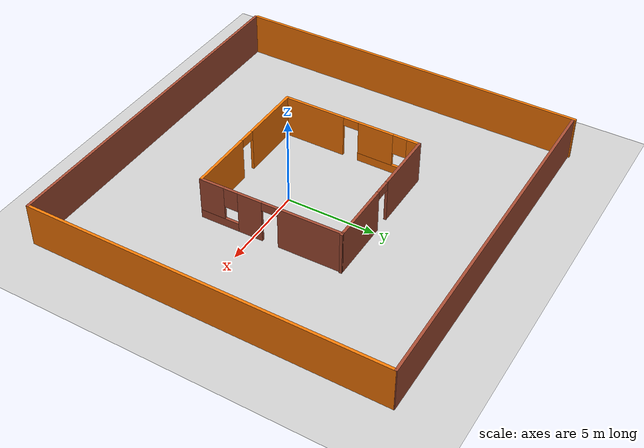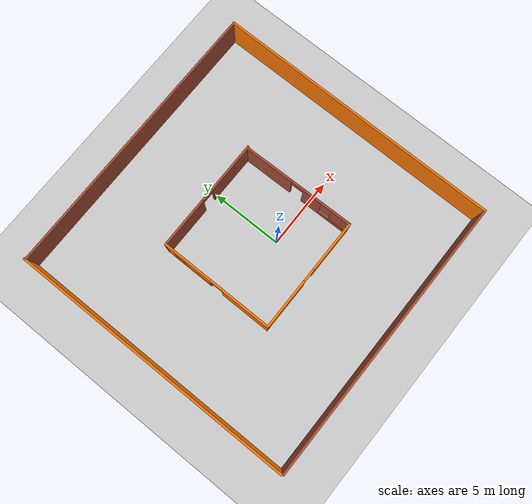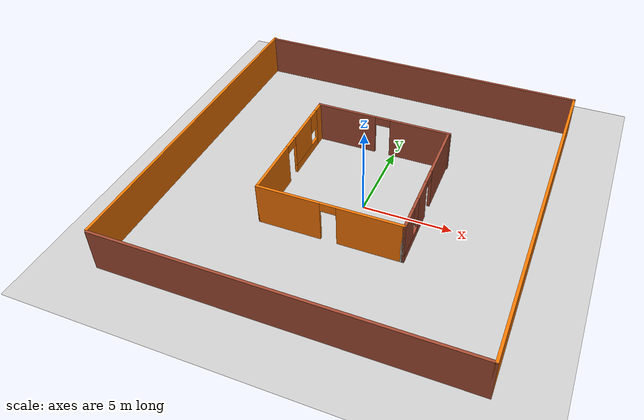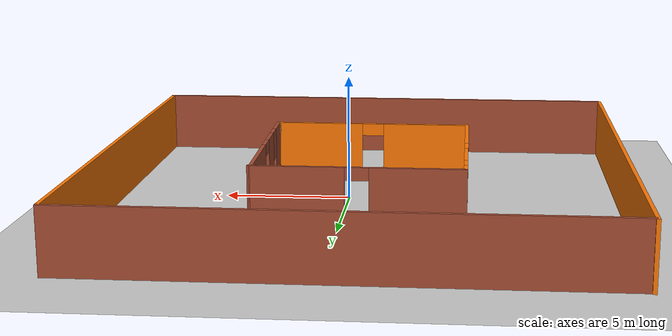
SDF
<sdf version="1.6">
 <world name="default">
  <model name="ground_plane">
   <static>1</static>
   <link name="link">
    <collision name="collision">
     <geometry><plane><normal>0 0 1</normal><size>100 100</size></plane></geometry>
     <surface><friction><ode><mu>100</mu><mu2>50</mu2></ode></friction></surface>
    </collision>
    <visual name="visual">
     <cast_shadows>0</cast_shadows>
     <geometry><plane><normal>0 0 1</normal><size>100 100</size></plane></geometry>
     <material>
      <script><uri>file://media/materials/scripts/gazebo.material</uri><name>Gazebo/Grey</name></script>
     </material>
    </visual>
   </link>
  </model>
  <model name="walls">
   <link name="Wall_44">
    <pose>0 -10 0 0 -0 0</pose>
    <inertial>
     <mass>1</mass>
     <inertia><ixx>1</ixx><ixy>0</ixy><ixz>0</ixz><iyy>1</iyy><iyz>0</iyz><izz>1</izz></inertia>
    </inertial>
    <visual name="Wall_44_Visual">
     <pose>0 0 1.25 0 -0 0</pose>
     <geometry><box><size>20.15 0.15 2.5</size></box></geometry>
     <material>
      <script><uri>file://media/materials/scripts/gazebo.material</uri><name>Gazebo/Bricks</name></script>
      <ambient>0.761 0.663 0.627 1</ambient>
      <shader type="pixel"><normal_map>__default__</normal_map></shader>
      <diffuse>1 1 1 1</diffuse>
      <specular>0.2 0.2 0.2 1</specular>
      <emissive>0 0 0 1</emissive>
     </material>
     <meta><layer>0</layer></meta>
    </visual>
    <collision name="Wall_44_Collision">
     <pose>0 0 1.25 0 -0 0</pose>
     <geometry><box><size>20.15 0.15 2.5</size></box></geometry>
     <surface>
      <friction>
       <ode><mu>1</mu><mu2>1</mu2><fdir1>0 0 0</fdir1><slip1>0</slip1><slip2>0</slip2></ode>
       <torsional>
        <coefficient>1</coefficient>
        <patch_radius>0</patch_radius>
        <surface_radius>0</surface_radius>
        <use_patch_radius>1</use_patch_radius>
        <ode><slip>0</slip></ode>
       </torsional>
      </friction>
      <bounce><restitution_coefficient>0</restitution_coefficient><threshold>1e+06</threshold></bounce>
      <contact>
       <collide_without_contact>0</collide_without_contact>
       <collide_without_contact_bitmask>1</collide_without_contact_bitmask>
       <collide_bitmask>1</collide_bitmask>
       <ode>
        <soft_cfm>0</soft_cfm>
        <soft_erp>0.2</soft_erp>
        <kp>1e+13</kp>
        <kd>1</kd>
        <max_vel>0.01</max_vel>
        <min_depth>0</min_depth>
       </ode>
       <bullet>
        <split_impulse>1</split_impulse>
        <split_impulse_penetration_threshold>-0.01</split_impulse_penetration_threshold>
        <soft_cfm>0</soft_cfm>
        <soft_erp>0.2</soft_erp>
        <kp>1e+13</kp>
        <kd>1</kd>
       </bullet>
      </contact>
     </surface>
    </collision>
   </link>
   <link name="Wall_44_clone">
    <pose>-0.011522 10.0457 0 0 -0 0</pose>
    <inertial>
     <mass>1</mass>
     <inertia><ixx>1</ixx><ixy>0</ixy><ixz>0</ixz><iyy>1</iyy><iyz>0</iyz><izz>1</izz></inertia>
    </inertial>
    <visual name="Wall_44_Visual">
     <pose>0 0 1.25 0 -0 0</pose>
     <geometry><box><size>20.15 0.15 2.5</size></box></geometry>
     <material>
      <script><uri>file://media/materials/scripts/gazebo.material</uri><name>Gazebo/Bricks</name></script>
      <ambient>0.761 0.663 0.627 1</ambient>
      <shader type="pixel"><normal_map>__default__</normal_map></shader>
      <diffuse>1 1 1 1</diffuse>
      <specular>0.2 0.2 0.2 1</specular>
      <emissive>0 0 0 1</emissive>
     </material>
     <meta><layer>0</layer></meta>
    </visual>
    <collision name="Wall_44_Collision">
     <pose>0 0 1.25 0 -0 0</pose>
     <geometry><box><size>20.15 0.15 2.5</size></box></geometry>
     <surface>
      <friction>
       <ode><mu>1</mu><mu2>1</mu2><fdir1>0 0 0</fdir1><slip1>0</slip1><slip2>0</slip2></ode>
       <torsional>
        <coefficient>1</coefficient>
        <patch_radius>0</patch_radius>
        <surface_radius>0</surface_radius>
        <use_patch_radius>1</use_patch_radius>
        <ode><slip>0</slip></ode>
       </torsional>
      </friction>
      <bounce><restitution_coefficient>0</restitution_coefficient><threshold>1e+06</threshold></bounce>
      <contact>
       <collide_without_contact>0</collide_without_contact>
       <collide_without_contact_bitmask>1</collide_without_contact_bitmask>
       <collide_bitmask>1</collide_bitmask>
       <ode>
        <soft_cfm>0</soft_cfm>
        <soft_erp>0.2</soft_erp>
        <kp>1e+13</kp>
        <kd>1</kd>
        <max_vel>0.01</max_vel>
        <min_depth>0</min_depth>
       </ode>
       <bullet>
        <split_impulse>1</split_impulse>
        <split_impulse_penetration_threshold>-0.01</split_impulse_penetration_threshold>
        <soft_cfm>0</soft_cfm>
        <soft_erp>0.2</soft_erp>
        <kp>1e+13</kp>
        <kd>1</kd>
       </bullet>
      </contact>
     </surface>
    </collision>
   </link>
   <link name="Wall_45">
    <pose>10 0 0 0 -0 1.5708</pose>
    <visual name="Wall_45_Visual">
     <pose>0 0 1.25 0 -0 0</pose>
     <geometry><box><size>20.15 0.15 2.5</size></box></geometry>
     <material>
      <script><uri>file://media/materials/scripts/gazebo.material</uri><name>Gazebo/Grey</name></script>
      <ambient>0.996078 0.47451 0.0196078 1</ambient>
      <shader type="pixel"/>
      <diffuse>0.7 0.7 0.7 1</diffuse>
      <specular>0.01 0.01 0.01 1</specular>
      <emissive>0 0 0 1</emissive>
     </material>
     <meta><layer>0</layer></meta>
    </visual>
    <collision name="Wall_45_Collision">
     <pose>0 0 1.25 0 -0 0</pose>
     <geometry><box><size>20.15 0.15 2.5</size></box></geometry>
     <surface>
      <friction>
       <ode><mu>1</mu><mu2>1</mu2><fdir1>0 0 0</fdir1><slip1>0</slip1><slip2>0</slip2></ode>
       <torsional>
        <coefficient>1</coefficient>
        <patch_radius>0</patch_radius>
        <surface_radius>0</surface_radius>
        <use_patch_radius>1</use_patch_radius>
        <ode><slip>0</slip></ode>
       </torsional>
      </friction>
      <bounce><restitution_coefficient>0</restitution_coefficient><threshold>1e+06</threshold></bounce>
      <contact>
       <collide_without_contact>0</collide_without_contact>
       <collide_without_contact_bitmask>1</collide_without_contact_bitmask>
       <collide_bitmask>1</collide_bitmask>
       <ode>
        <soft_cfm>0</soft_cfm>
        <soft_erp>0.2</soft_erp>
        <kp>1e+13</kp>
        <kd>1</kd>
        <max_vel>0.01</max_vel>
        <min_depth>0</min_depth>
       </ode>
       <bullet>
        <split_impulse>1</split_impulse>
        <split_impulse_penetration_threshold>-0.01</split_impulse_penetration_threshold>
        <soft_cfm>0</soft_cfm>
        <soft_erp>0.2</soft_erp>
        <kp>1e+13</kp>
        <kd>1</kd>
       </bullet>
      </contact>
     </surface>
    </collision>
   </link>
   <link name="Wall_45_clone">
    <pose>-10.0927 0.116806 0 0 -0 1.5708</pose>
    <visual name="Wall_45_Visual">
     <pose>0 0 1.25 0 -0 0</pose>
     <geometry><box><size>20.15 0.15 2.5</size></box></geometry>
     <material>
      <script><uri>file://media/materials/scripts/gazebo.material</uri><name>Gazebo/Grey</name></script>
      <ambient>0.996078 0.47451 0.0196078 1</ambient>
      <shader type="pixel"/>
      <diffuse>0.7 0.7 0.7 1</diffuse>
      <specular>0.01 0.01 0.01 1</specular>
      <emissive>0 0 0 1</emissive>
     </material>
     <meta><layer>0</layer></meta>
    </visual>
    <collision name="Wall_45_Collision">
     <pose>0 0 1.25 0 -0 0</pose>
     <geometry><box><size>20.15 0.15 2.5</size></box></geometry>
     <surface>
      <friction>
       <ode><mu>1</mu><mu2>1</mu2><fdir1>0 0 0</fdir1><slip1>0</slip1><slip2>0</slip2></ode>
       <torsional>
        <coefficient>1</coefficient>
        <patch_radius>0</patch_radius>
        <surface_radius>0</surface_radius>
        <use_patch_radius>1</use_patch_radius>
        <ode><slip>0</slip></ode>
       </torsional>
      </friction>
      <bounce><restitution_coefficient>0</restitution_coefficient><threshold>1e+06</threshold></bounce>
      <contact>
       <collide_without_contact>0</collide_without_contact>
       <collide_without_contact_bitmask>1</collide_without_contact_bitmask>
       <collide_bitmask>1</collide_bitmask>
       <ode>
        <soft_cfm>0</soft_cfm>
        <soft_erp>0.2</soft_erp>
        <kp>1e+13</kp>
        <kd>1</kd>
        <max_vel>0.01</max_vel>
        <min_depth>0</min_depth>
       </ode>
       <bullet>
        <split_impulse>1</split_impulse>
        <split_impulse_penetration_threshold>-0.01</split_impulse_penetration_threshold>
        <soft_cfm>0</soft_cfm>
        <soft_erp>0.2</soft_erp>
        <kp>1e+13</kp>
        <kd>1</kd>
       </bullet>
      </contact>
     </surface>
    </collision>
   </link>
   <link name="Wall_49">
    <pose>-4 0 0 0 0 -1.5708</pose>
    <visual name="Wall_49_Visual_0">
     <pose>-3.69081 0 1.25 0 -0 0</pose>
     <geometry><box><size>0.768371 0.15 2.5</size></box></geometry>
     <material>
      <script><uri>file://media/materials/scripts/gazebo.material</uri><name>Gazebo/Grey</name></script>
      <ambient>0.996078 0.47451 0.0196078 1</ambient>
      <shader type="pixel"/>
      <diffuse>0.7 0.7 0.7 1</diffuse>
      <specular>0.01 0.01 0.01 1</specular>
      <emissive>0 0 0 1</emissive>
     </material>
     <meta><layer>0</layer></meta>
    </visual>
    <visual name="Wall_49_Visual_5">
     <pose>0 0 2.25 0 -0 0</pose>
     <geometry><box><size>0.9 0.15 0.5</size></box></geometry>
     <material>
      <script><uri>file://media/materials/scripts/gazebo.material</uri><name>Gazebo/Grey</name></script>
      <ambient>0.996078 0.47451 0.0196078 1</ambient>
      <shader type="pixel"/>
      <diffuse>0.7 0.7 0.7 1</diffuse>
      <specular>0.01 0.01 0.01 1</specular>
      <emissive>0 0 0 1</emissive>
     </material>
     <meta><layer>0</layer></meta>
    </visual>
    <visual name="Wall_49_Visual_4">
     <pose>-2.90663 0 1.9 0 -0 0</pose>
     <geometry><box><size>0.8 0.15 1.2</size></box></geometry>
     <material>
      <script><uri>file://media/materials/scripts/gazebo.material</uri><name>Gazebo/Grey</name></script>
      <ambient>0.996078 0.47451 0.0196078 1</ambient>
      <shader type="pixel"/>
      <diffuse>0.7 0.7 0.7 1</diffuse>
      <specular>0.01 0.01 0.01 1</specular>
      <emissive>0 0 0 1</emissive>
     </material>
     <meta><layer>0</layer></meta>
    </visual>
    <visual name="Wall_49_Visual_3">
     <pose>-1.47831 0 1.5 0 -0 0</pose>
     <geometry><box><size>2.05663 0.15 2</size></box></geometry>
     <material>
      <script><uri>file://media/materials/scripts/gazebo.material</uri><name>Gazebo/Grey</name></script>
      <ambient>0.996078 0.47451 0.0196078 1</ambient>
      <shader type="pixel"/>
      <diffuse>0.7 0.7 0.7 1</diffuse>
      <specular>0.01 0.01 0.01 1</specular>
      <emissive>0 0 0 1</emissive>
     </material>
     <meta><layer>0</layer></meta>
    </visual>
    <visual name="Wall_49_Visual_1">
     <pose>2.2625 0 1.25 0 -0 0</pose>
     <geometry><box><size>3.625 0.15 2.5</size></box></geometry>
     <material>
      <script><uri>file://media/materials/scripts/gazebo.material</uri><name>Gazebo/Grey</name></script>
      <ambient>0.996078 0.47451 0.0196078 1</ambient>
      <shader type="pixel"/>
      <diffuse>0.7 0.7 0.7 1</diffuse>
      <specular>0.01 0.01 0.01 1</specular>
      <emissive>0 0 0 1</emissive>
     </material>
     <meta><layer>0</layer></meta>
    </visual>
    <visual name="Wall_49_Visual_2">
     <pose>-1.87831 0 0.25 0 -0 0</pose>
     <geometry><box><size>2.85663 0.15 0.5</size></box></geometry>
     <material>
      <script><uri>file://media/materials/scripts/gazebo.material</uri><name>Gazebo/Grey</name></script>
      <ambient>0.996078 0.47451 0.0196078 1</ambient>
      <shader type="pixel"/>
      <diffuse>0.7 0.7 0.7 1</diffuse>
      <specular>0.01 0.01 0.01 1</specular>
      <emissive>0 0 0 1</emissive>
     </material>
     <meta><layer>0</layer></meta>
    </visual>
    <collision name="Wall_49_Collision_2">
     <pose>-1.87831 0 0.25 0 -0 0</pose>
     <geometry><box><size>2.85663 0.15 0.5</size></box></geometry>
     <surface>
      <friction>
       <ode><mu>1</mu><mu2>1</mu2><fdir1>0 0 0</fdir1><slip1>0</slip1><slip2>0</slip2></ode>
       <torsional>
        <coefficient>1</coefficient>
        <patch_radius>0</patch_radius>
        <surface_radius>0</surface_radius>
        <use_patch_radius>1</use_patch_radius>
        <ode><slip>0</slip></ode>
       </torsional>
      </friction>
      <bounce><restitution_coefficient>0</restitution_coefficient><threshold>1e+06</threshold></bounce>
      <contact>
       <collide_without_contact>0</collide_without_contact>
       <collide_without_contact_bitmask>1</collide_without_contact_bitmask>
       <collide_bitmask>1</collide_bitmask>
       <ode>
        <soft_cfm>0</soft_cfm>
        <soft_erp>0.2</soft_erp>
        <kp>1e+13</kp>
        <kd>1</kd>
        <max_vel>0.01</max_vel>
        <min_depth>0</min_depth>
       </ode>
       <bullet>
        <split_impulse>1</split_impulse>
        <split_impulse_penetration_threshold>-0.01</split_impulse_penetration_threshold>
        <soft_cfm>0</soft_cfm>
        <soft_erp>0.2</soft_erp>
        <kp>1e+13</kp>
        <kd>1</kd>
       </bullet>
      </contact>
     </surface>
    </collision>
    <collision name="Wall_49_Collision_4">
     <pose>-2.90663 0 1.9 0 -0 0</pose>
     <geometry><box><size>0.8 0.15 1.2</size></box></geometry>
     <surface>
      <friction>
       <ode><mu>1</mu><mu2>1</mu2><fdir1>0 0 0</fdir1><slip1>0</slip1><slip2>0</slip2></ode>
       <torsional>
        <coefficient>1</coefficient>
        <patch_radius>0</patch_radius>
        <surface_radius>0</surface_radius>
        <use_patch_radius>1</use_patch_radius>
        <ode><slip>0</slip></ode>
       </torsional>
      </friction>
      <bounce><restitution_coefficient>0</restitution_coefficient><threshold>1e+06</threshold></bounce>
      <contact>
       <collide_without_contact>0</collide_without_contact>
       <collide_without_contact_bitmask>1</collide_without_contact_bitmask>
       <collide_bitmask>1</collide_bitmask>
       <ode>
        <soft_cfm>0</soft_cfm>
        <soft_erp>0.2</soft_erp>
        <kp>1e+13</kp>
        <kd>1</kd>
        <max_vel>0.01</max_vel>
        <min_depth>0</min_depth>
       </ode>
       <bullet>
        <split_impulse>1</split_impulse>
        <split_impulse_penetration_threshold>-0.01</split_impulse_penetration_threshold>
        <soft_cfm>0</soft_cfm>
        <soft_erp>0.2</soft_erp>
        <kp>1e+13</kp>
        <kd>1</kd>
       </bullet>
      </contact>
     </surface>
    </collision>
    <collision name="Wall_49_Collision_1">
     <pose>2.2625 0 1.25 0 -0 0</pose>
     <geometry><box><size>3.625 0.15 2.5</size></box></geometry>
     <surface>
      <friction>
       <ode><mu>1</mu><mu2>1</mu2><fdir1>0 0 0</fdir1><slip1>0</slip1><slip2>0</slip2></ode>
       <torsional>
        <coefficient>1</coefficient>
        <patch_radius>0</patch_radius>
        <surface_radius>0</surface_radius>
        <use_patch_radius>1</use_patch_radius>
        <ode><slip>0</slip></ode>
       </torsional>
      </friction>
      <bounce><restitution_coefficient>0</restitution_coefficient><threshold>1e+06</threshold></bounce>
      <contact>
       <collide_without_contact>0</collide_without_contact>
       <collide_without_contact_bitmask>1</collide_without_contact_bitmask>
       <collide_bitmask>1</collide_bitmask>
       <ode>
        <soft_cfm>0</soft_cfm>
        <soft_erp>0.2</soft_erp>
        <kp>1e+13</kp>
        <kd>1</kd>
        <max_vel>0.01</max_vel>
        <min_depth>0</min_depth>
       </ode>
       <bullet>
        <split_impulse>1</split_impulse>
        <split_impulse_penetration_threshold>-0.01</split_impulse_penetration_threshold>
        <soft_cfm>0</soft_cfm>
        <soft_erp>0.2</soft_erp>
        <kp>1e+13</kp>
        <kd>1</kd>
       </bullet>
      </contact>
     </surface>
    </collision>
    <collision name="Wall_49_Collision_5">
     <pose>0 0 2.25 0 -0 0</pose>
     <geometry><box><size>0.9 0.15 0.5</size></box></geometry>
     <surface>
      <friction>
       <ode><mu>1</mu><mu2>1</mu2><fdir1>0 0 0</fdir1><slip1>0</slip1><slip2>0</slip2></ode>
       <torsional>
        <coefficient>1</coefficient>
        <patch_radius>0</patch_radius>
        <surface_radius>0</surface_radius>
        <use_patch_radius>1</use_patch_radius>
        <ode><slip>0</slip></ode>
       </torsional>
      </friction>
      <bounce><restitution_coefficient>0</restitution_coefficient><threshold>1e+06</threshold></bounce>
      <contact>
       <collide_without_contact>0</collide_without_contact>
       <collide_without_contact_bitmask>1</collide_without_contact_bitmask>
       <collide_bitmask>1</collide_bitmask>
       <ode>
        <soft_cfm>0</soft_cfm>
        <soft_erp>0.2</soft_erp>
        <kp>1e+13</kp>
        <kd>1</kd>
        <max_vel>0.01</max_vel>
        <min_depth>0</min_depth>
       </ode>
       <bullet>
        <split_impulse>1</split_impulse>
        <split_impulse_penetration_threshold>-0.01</split_impulse_penetration_threshold>
        <soft_cfm>0</soft_cfm>
        <soft_erp>0.2</soft_erp>
        <kp>1e+13</kp>
        <kd>1</kd>
       </bullet>
      </contact>
     </surface>
    </collision>
    <collision name="Wall_49_Collision_3">
     <pose>-1.47831 0 1.5 0 -0 0</pose>
     <geometry><box><size>2.05663 0.15 2</size></box></geometry>
     <surface>
      <friction>
       <ode><mu>1</mu><mu2>1</mu2><fdir1>0 0 0</fdir1><slip1>0</slip1><slip2>0</slip2></ode>
       <torsional>
        <coefficient>1</coefficient>
        <patch_radius>0</patch_radius>
        <surface_radius>0</surface_radius>
        <use_patch_radius>1</use_patch_radius>
        <ode><slip>0</slip></ode>
       </torsional>
      </friction>
      <bounce><restitution_coefficient>0</restitution_coefficient><threshold>1e+06</threshold></bounce>
      <contact>
       <collide_without_contact>0</collide_without_contact>
       <collide_without_contact_bitmask>1</collide_without_contact_bitmask>
       <collide_bitmask>1</collide_bitmask>
       <ode>
        <soft_cfm>0</soft_cfm>
        <soft_erp>0.2</soft_erp>
        <kp>1e+13</kp>
        <kd>1</kd>
        <max_vel>0.01</max_vel>
        <min_depth>0</min_depth>
       </ode>
       <bullet>
        <split_impulse>1</split_impulse>
        <split_impulse_penetration_threshold>-0.01</split_impulse_penetration_threshold>
        <soft_cfm>0</soft_cfm>
        <soft_erp>0.2</soft_erp>
        <kp>1e+13</kp>
        <kd>1</kd>
       </bullet>
      </contact>
     </surface>
    </collision>
    <collision name="Wall_49_Collision_0">
     <pose>-3.69081 0 1.25 0 -0 0</pose>
     <geometry><box><size>0.768371 0.15 2.5</size></box></geometry>
     <surface>
      <friction>
       <ode><mu>1</mu><mu2>1</mu2><fdir1>0 0 0</fdir1><slip1>0</slip1><slip2>0</slip2></ode>
       <torsional>
        <coefficient>1</coefficient>
        <patch_radius>0</patch_radius>
        <surface_radius>0</surface_radius>
        <use_patch_radius>1</use_patch_radius>
        <ode><slip>0</slip></ode>
       </torsional>
      </friction>
      <bounce><restitution_coefficient>0</restitution_coefficient><threshold>1e+06</threshold></bounce>
      <contact>
       <collide_without_contact>0</collide_without_contact>
       <collide_without_contact_bitmask>1</collide_without_contact_bitmask>
       <collide_bitmask>1</collide_bitmask>
       <ode>
        <soft_cfm>0</soft_cfm>
        <soft_erp>0.2</soft_erp>
        <kp>1e+13</kp>
        <kd>1</kd>
        <max_vel>0.01</max_vel>
        <min_depth>0</min_depth>
       </ode>
       <bullet>
        <split_impulse>1</split_impulse>
        <split_impulse_penetration_threshold>-0.01</split_impulse_penetration_threshold>
        <soft_cfm>0</soft_cfm>
        <soft_erp>0.2</soft_erp>
        <kp>1e+13</kp>
        <kd>1</kd>
       </bullet>
      </contact>
     </surface>
    </collision>
   </link>
   <link name="Wall_50">
    <pose>0 -4 0 0 -0 0</pose>
    <visual name="Wall_50_Visual_2">
     <pose>0 0 2.25 0 -0 0</pose>
     <geometry><box><size>0.9 0.15 0.5</size></box></geometry>
     <material>
      <script><uri>file://media/materials/scripts/gazebo.material</uri><name>Gazebo/Grey</name></script>
      <ambient>0.996078 0.47451 0.0196078 1</ambient>
      <shader type="pixel"/>
      <diffuse>0.7 0.7 0.7 1</diffuse>
      <specular>0.01 0.01 0.01 1</specular>
      <emissive>0 0 0 1</emissive>
     </material>
     <meta><layer>0</layer></meta>
    </visual>
    <visual name="Wall_50_Visual_0">
     <pose>-2.2625 0 1.25 0 -0 0</pose>
     <geometry><box><size>3.625 0.15 2.5</size></box></geometry>
     <material>
      <script><uri>file://media/materials/scripts/gazebo.material</uri><name>Gazebo/Grey</name></script>
      <ambient>0.996078 0.47451 0.0196078 1</ambient>
      <shader type="pixel"/>
      <diffuse>0.7 0.7 0.7 1</diffuse>
      <specular>0.01 0.01 0.01 1</specular>
      <emissive>0 0 0 1</emissive>
     </material>
     <meta><layer>0</layer></meta>
    </visual>
    <visual name="Wall_50_Visual_1">
     <pose>2.2625 0 1.25 0 -0 0</pose>
     <geometry><box><size>3.625 0.15 2.5</size></box></geometry>
     <material>
      <script><uri>file://media/materials/scripts/gazebo.material</uri><name>Gazebo/Grey</name></script>
      <ambient>0.996078 0.47451 0.0196078 1</ambient>
      <shader type="pixel"/>
      <diffuse>0.7 0.7 0.7 1</diffuse>
      <specular>0.01 0.01 0.01 1</specular>
      <emissive>0 0 0 1</emissive>
     </material>
     <meta><layer>0</layer></meta>
    </visual>
    <collision name="Wall_50_Collision_1">
     <pose>2.2625 0 1.25 0 -0 0</pose>
     <geometry><box><size>3.625 0.15 2.5</size></box></geometry>
     <surface>
      <friction>
       <ode><mu>1</mu><mu2>1</mu2><fdir1>0 0 0</fdir1><slip1>0</slip1><slip2>0</slip2></ode>
       <torsional>
        <coefficient>1</coefficient>
        <patch_radius>0</patch_radius>
        <surface_radius>0</surface_radius>
        <use_patch_radius>1</use_patch_radius>
        <ode><slip>0</slip></ode>
       </torsional>
      </friction>
      <bounce><restitution_coefficient>0</restitution_coefficient><threshold>1e+06</threshold></bounce>
      <contact>
       <collide_without_contact>0</collide_without_contact>
       <collide_without_contact_bitmask>1</collide_without_contact_bitmask>
       <collide_bitmask>1</collide_bitmask>
       <ode>
        <soft_cfm>0</soft_cfm>
        <soft_erp>0.2</soft_erp>
        <kp>1e+13</kp>
        <kd>1</kd>
        <max_vel>0.01</max_vel>
        <min_depth>0</min_depth>
       </ode>
       <bullet>
        <split_impulse>1</split_impulse>
        <split_impulse_penetration_threshold>-0.01</split_impulse_penetration_threshold>
        <soft_cfm>0</soft_cfm>
        <soft_erp>0.2</soft_erp>
        <kp>1e+13</kp>
        <kd>1</kd>
       </bullet>
      </contact>
     </surface>
    </collision>
    <collision name="Wall_50_Collision_0">
     <pose>-2.2625 0 1.25 0 -0 0</pose>
     <geometry><box><size>3.625 0.15 2.5</size></box></geometry>
     <surface>
      <friction>
       <ode><mu>1</mu><mu2>1</mu2><fdir1>0 0 0</fdir1><slip1>0</slip1><slip2>0</slip2></ode>
       <torsional>
        <coefficient>1</coefficient>
        <patch_radius>0</patch_radius>
        <surface_radius>0</surface_radius>
        <use_patch_radius>1</use_patch_radius>
        <ode><slip>0</slip></ode>
       </torsional>
      </friction>
      <bounce><restitution_coefficient>0</restitution_coefficient><threshold>1e+06</threshold></bounce>
      <contact>
       <collide_without_contact>0</collide_without_contact>
       <collide_without_contact_bitmask>1</collide_without_contact_bitmask>
       <collide_bitmask>1</collide_bitmask>
       <ode>
        <soft_cfm>0</soft_cfm>
        <soft_erp>0.2</soft_erp>
        <kp>1e+13</kp>
        <kd>1</kd>
        <max_vel>0.01</max_vel>
        <min_depth>0</min_depth>
       </ode>
       <bullet>
        <split_impulse>1</split_impulse>
        <split_impulse_penetration_threshold>-0.01</split_impulse_penetration_threshold>
        <soft_cfm>0</soft_cfm>
        <soft_erp>0.2</soft_erp>
        <kp>1e+13</kp>
        <kd>1</kd>
       </bullet>
      </contact>
     </surface>
    </collision>
    <collision name="Wall_50_Collision_2">
     <pose>0 0 2.25 0 -0 0</pose>
     <geometry><box><size>0.9 0.15 0.5</size></box></geometry>
     <surface>
      <friction>
       <ode><mu>1</mu><mu2>1</mu2><fdir1>0 0 0</fdir1><slip1>0</slip1><slip2>0</slip2></ode>
       <torsional>
        <coefficient>1</coefficient>
        <patch_radius>0</patch_radius>
        <surface_radius>0</surface_radius>
        <use_patch_radius>1</use_patch_radius>
        <ode><slip>0</slip></ode>
       </torsional>
      </friction>
      <bounce><restitution_coefficient>0</restitution_coefficient><threshold>1e+06</threshold></bounce>
      <contact>
       <collide_without_contact>0</collide_without_contact>
       <collide_without_contact_bitmask>1</collide_without_contact_bitmask>
       <collide_bitmask>1</collide_bitmask>
       <ode>
        <soft_cfm>0</soft_cfm>
        <soft_erp>0.2</soft_erp>
        <kp>1e+13</kp>
        <kd>1</kd>
        <max_vel>0.01</max_vel>
        <min_depth>0</min_depth>
       </ode>
       <bullet>
        <split_impulse>1</split_impulse>
        <split_impulse_penetration_threshold>-0.01</split_impulse_penetration_threshold>
        <soft_cfm>0</soft_cfm>
        <soft_erp>0.2</soft_erp>
        <kp>1e+13</kp>
        <kd>1</kd>
       </bullet>
      </contact>
     </surface>
    </collision>
   </link>
   <link name="Wall_51">
    <pose>4 -4 0 0 -0 0</pose>
    <visual name="Wall_51_Visual">
     <pose>0 0 1.25 0 -0 0</pose>
     <geometry><box><size>0.15 0.15 2.5</size></box></geometry>
     <material>
      <script><uri>file://media/materials/scripts/gazebo.material</uri><name>Gazebo/CeilingTiled</name></script>
      <ambient>0.435294 0.796078 0.67451 1</ambient>
      <shader type="pixel"/>
      <diffuse>1 1 1 1</diffuse>
      <specular>0 0 0 1</specular>
      <emissive>0 0 0 1</emissive>
     </material>
     <meta><layer>0</layer></meta>
    </visual>
    <collision name="Wall_51_Collision">
     <pose>0 0 1.25 0 -0 0</pose>
     <geometry><box><size>0.15 0.15 2.5</size></box></geometry>
     <surface>
      <friction>
       <ode><mu>1</mu><mu2>1</mu2><fdir1>0 0 0</fdir1><slip1>0</slip1><slip2>0</slip2></ode>
       <torsional>
        <coefficient>1</coefficient>
        <patch_radius>0</patch_radius>
        <surface_radius>0</surface_radius>
        <use_patch_radius>1</use_patch_radius>
        <ode><slip>0</slip></ode>
       </torsional>
      </friction>
      <bounce><restitution_coefficient>0</restitution_coefficient><threshold>1e+06</threshold></bounce>
      <contact>
       <collide_without_contact>0</collide_without_contact>
       <collide_without_contact_bitmask>1</collide_without_contact_bitmask>
       <collide_bitmask>1</collide_bitmask>
       <ode>
        <soft_cfm>0</soft_cfm>
        <soft_erp>0.2</soft_erp>
        <kp>1e+13</kp>
        <kd>1</kd>
        <max_vel>0.01</max_vel>
        <min_depth>0</min_depth>
       </ode>
       <bullet>
        <split_impulse>1</split_impulse>
        <split_impulse_penetration_threshold>-0.01</split_impulse_penetration_threshold>
        <soft_cfm>0</soft_cfm>
        <soft_erp>0.2</soft_erp>
        <kp>1e+13</kp>
        <kd>1</kd>
       </bullet>
      </contact>
     </surface>
    </collision>
   </link>
   <link name="Wall_52">
    <pose>4 0 0 0 0 -1.55478</pose>
    <visual name="Wall_52_Visual_3">
     <pose>3.35831 0 1.5 0 -0 0</pose>
     <geometry><box><size>1.43338 0.15 2</size></box></geometry>
     <material>
      <script><uri>file://media/materials/scripts/gazebo.material</uri><name>Gazebo/Bricks</name></script>
      <ambient>1 1 1 1</ambient>
      <shader type="pixel"/>
      <diffuse>1 1 1 1</diffuse>
      <specular>0.2 0.2 0.2 1</specular>
      <emissive>0 0 0 1</emissive>
     </material>
     <meta><layer>0</layer></meta>
    </visual>
    <visual name="Wall_52_Visual_5">
     <pose>0.003404 0 2.25 0 -0 0</pose>
     <geometry><box><size>0.9 0.15 0.5</size></box></geometry>
     <material>
      <script><uri>file://media/materials/scripts/gazebo.material</uri><name>Gazebo/Bricks</name></script>
      <ambient>1 1 1 1</ambient>
      <shader type="pixel"/>
      <diffuse>1 1 1 1</diffuse>
      <specular>0.2 0.2 0.2 1</specular>
      <emissive>0 0 0 1</emissive>
     </material>
     <meta><layer>0</layer></meta>
    </visual>
    <visual name="Wall_52_Visual_4">
     <pose>2.24162 0 1.9 0 -0 0</pose>
     <geometry><box><size>0.8 0.15 1.2</size></box></geometry>
     <material>
      <script><uri>file://media/materials/scripts/gazebo.material</uri><name>Gazebo/Bricks</name></script>
      <ambient>1 1 1 1</ambient>
      <shader type="pixel"/>
      <diffuse>1 1 1 1</diffuse>
      <specular>0.2 0.2 0.2 1</specular>
      <emissive>0 0 0 1</emissive>
     </material>
     <meta><layer>0</layer></meta>
    </visual>
    <visual name="Wall_52_Visual_1">
     <pose>1.14751 0 1.25 0 -0 0</pose>
     <geometry><box><size>1.38822 0.15 2.5</size></box></geometry>
     <material>
      <script><uri>file://media/materials/scripts/gazebo.material</uri><name>Gazebo/Bricks</name></script>
      <ambient>1 1 1 1</ambient>
      <shader type="pixel"/>
      <diffuse>1 1 1 1</diffuse>
      <specular>0.2 0.2 0.2 1</specular>
      <emissive>0 0 0 1</emissive>
     </material>
     <meta><layer>0</layer></meta>
    </visual>
    <visual name="Wall_52_Visual_2">
     <pose>2.95831 0 0.25 0 -0 0</pose>
     <geometry><box><size>2.23338 0.15 0.5</size></box></geometry>
     <material>
      <script><uri>file://media/materials/scripts/gazebo.material</uri><name>Gazebo/Bricks</name></script>
      <ambient>1 1 1 1</ambient>
      <shader type="pixel"/>
      <diffuse>1 1 1 1</diffuse>
      <specular>0.2 0.2 0.2 1</specular>
      <emissive>0 0 0 1</emissive>
     </material>
     <meta><layer>0</layer></meta>
    </visual>
    <visual name="Wall_52_Visual_0">
     <pose>-2.2608 0 1.25 0 -0 0</pose>
     <geometry><box><size>3.6284 0.15 2.5</size></box></geometry>
     <material>
      <script><uri>file://media/materials/scripts/gazebo.material</uri><name>Gazebo/Bricks</name></script>
      <ambient>1 1 1 1</ambient>
      <shader type="pixel"/>
      <diffuse>1 1 1 1</diffuse>
      <specular>0.2 0.2 0.2 1</specular>
      <emissive>0 0 0 1</emissive>
     </material>
     <meta><layer>0</layer></meta>
    </visual>
    <collision name="Wall_52_Collision_0">
     <pose>-2.2608 0 1.25 0 -0 0</pose>
     <geometry><box><size>3.6284 0.15 2.5</size></box></geometry>
     <surface>
      <friction>
       <ode><mu>1</mu><mu2>1</mu2><fdir1>0 0 0</fdir1><slip1>0</slip1><slip2>0</slip2></ode>
       <torsional>
        <coefficient>1</coefficient>
        <patch_radius>0</patch_radius>
        <surface_radius>0</surface_radius>
        <use_patch_radius>1</use_patch_radius>
        <ode><slip>0</slip></ode>
       </torsional>
      </friction>
      <bounce><restitution_coefficient>0</restitution_coefficient><threshold>1e+06</threshold></bounce>
      <contact>
       <collide_without_contact>0</collide_without_contact>
       <collide_without_contact_bitmask>1</collide_without_contact_bitmask>
       <collide_bitmask>1</collide_bitmask>
       <ode>
        <soft_cfm>0</soft_cfm>
        <soft_erp>0.2</soft_erp>
        <kp>1e+13</kp>
        <kd>1</kd>
        <max_vel>0.01</max_vel>
        <min_depth>0</min_depth>
       </ode>
       <bullet>
        <split_impulse>1</split_impulse>
        <split_impulse_penetration_threshold>-0.01</split_impulse_penetration_threshold>
        <soft_cfm>0</soft_cfm>
        <soft_erp>0.2</soft_erp>
        <kp>1e+13</kp>
        <kd>1</kd>
       </bullet>
      </contact>
     </surface>
    </collision>
    <collision name="Wall_52_Collision_2">
     <pose>2.95831 0 0.25 0 -0 0</pose>
     <geometry><box><size>2.23338 0.15 0.5</size></box></geometry>
     <surface>
      <friction>
       <ode><mu>1</mu><mu2>1</mu2><fdir1>0 0 0</fdir1><slip1>0</slip1><slip2>0</slip2></ode>
       <torsional>
        <coefficient>1</coefficient>
        <patch_radius>0</patch_radius>
        <surface_radius>0</surface_radius>
        <use_patch_radius>1</use_patch_radius>
        <ode><slip>0</slip></ode>
       </torsional>
      </friction>
      <bounce><restitution_coefficient>0</restitution_coefficient><threshold>1e+06</threshold></bounce>
      <contact>
       <collide_without_contact>0</collide_without_contact>
       <collide_without_contact_bitmask>1</collide_without_contact_bitmask>
       <collide_bitmask>1</collide_bitmask>
       <ode>
        <soft_cfm>0</soft_cfm>
        <soft_erp>0.2</soft_erp>
        <kp>1e+13</kp>
        <kd>1</kd>
        <max_vel>0.01</max_vel>
        <min_depth>0</min_depth>
       </ode>
       <bullet>
        <split_impulse>1</split_impulse>
        <split_impulse_penetration_threshold>-0.01</split_impulse_penetration_threshold>
        <soft_cfm>0</soft_cfm>
        <soft_erp>0.2</soft_erp>
        <kp>1e+13</kp>
        <kd>1</kd>
       </bullet>
      </contact>
     </surface>
    </collision>
    <collision name="Wall_52_Collision_1">
     <pose>1.14751 0 1.25 0 -0 0</pose>
     <geometry><box><size>1.38822 0.15 2.5</size></box></geometry>
     <surface>
      <friction>
       <ode><mu>1</mu><mu2>1</mu2><fdir1>0 0 0</fdir1><slip1>0</slip1><slip2>0</slip2></ode>
       <torsional>
        <coefficient>1</coefficient>
        <patch_radius>0</patch_radius>
        <surface_radius>0</surface_radius>
        <use_patch_radius>1</use_patch_radius>
        <ode><slip>0</slip></ode>
       </torsional>
      </friction>
      <bounce><restitution_coefficient>0</restitution_coefficient><threshold>1e+06</threshold></bounce>
      <contact>
       <collide_without_contact>0</collide_without_contact>
       <collide_without_contact_bitmask>1</collide_without_contact_bitmask>
       <collide_bitmask>1</collide_bitmask>
       <ode>
        <soft_cfm>0</soft_cfm>
        <soft_erp>0.2</soft_erp>
        <kp>1e+13</kp>
        <kd>1</kd>
        <max_vel>0.01</max_vel>
        <min_depth>0</min_depth>
       </ode>
       <bullet>
        <split_impulse>1</split_impulse>
        <split_impulse_penetration_threshold>-0.01</split_impulse_penetration_threshold>
        <soft_cfm>0</soft_cfm>
        <soft_erp>0.2</soft_erp>
        <kp>1e+13</kp>
        <kd>1</kd>
       </bullet>
      </contact>
     </surface>
    </collision>
    <collision name="Wall_52_Collision_3">
     <pose>3.35831 0 1.5 0 -0 0</pose>
     <geometry><box><size>1.43338 0.15 2</size></box></geometry>
     <surface>
      <friction>
       <ode><mu>1</mu><mu2>1</mu2><fdir1>0 0 0</fdir1><slip1>0</slip1><slip2>0</slip2></ode>
       <torsional>
        <coefficient>1</coefficient>
        <patch_radius>0</patch_radius>
        <surface_radius>0</surface_radius>
        <use_patch_radius>1</use_patch_radius>
        <ode><slip>0</slip></ode>
       </torsional>
      </friction>
      <bounce><restitution_coefficient>0</restitution_coefficient><threshold>1e+06</threshold></bounce>
      <contact>
       <collide_without_contact>0</collide_without_contact>
       <collide_without_contact_bitmask>1</collide_without_contact_bitmask>
       <collide_bitmask>1</collide_bitmask>
       <ode>
        <soft_cfm>0</soft_cfm>
        <soft_erp>0.2</soft_erp>
        <kp>1e+13</kp>
        <kd>1</kd>
        <max_vel>0.01</max_vel>
        <min_depth>0</min_depth>
       </ode>
       <bullet>
        <split_impulse>1</split_impulse>
        <split_impulse_penetration_threshold>-0.01</split_impulse_penetration_threshold>
        <soft_cfm>0</soft_cfm>
        <soft_erp>0.2</soft_erp>
        <kp>1e+13</kp>
        <kd>1</kd>
       </bullet>
      </contact>
     </surface>
    </collision>
    <collision name="Wall_52_Collision_5">
     <pose>0.003404 0 2.25 0 -0 0</pose>
     <geometry><box><size>0.9 0.15 0.5</size></box></geometry>
     <surface>
      <friction>
       <ode><mu>1</mu><mu2>1</mu2><fdir1>0 0 0</fdir1><slip1>0</slip1><slip2>0</slip2></ode>
       <torsional>
        <coefficient>1</coefficient>
        <patch_radius>0</patch_radius>
        <surface_radius>0</surface_radius>
        <use_patch_radius>1</use_patch_radius>
        <ode><slip>0</slip></ode>
       </torsional>
      </friction>
      <bounce><restitution_coefficient>0</restitution_coefficient><threshold>1e+06</threshold></bounce>
      <contact>
       <collide_without_contact>0</collide_without_contact>
       <collide_without_contact_bitmask>1</collide_without_contact_bitmask>
       <collide_bitmask>1</collide_bitmask>
       <ode>
        <soft_cfm>0</soft_cfm>
        <soft_erp>0.2</soft_erp>
        <kp>1e+13</kp>
        <kd>1</kd>
        <max_vel>0.01</max_vel>
        <min_depth>0</min_depth>
       </ode>
       <bullet>
        <split_impulse>1</split_impulse>
        <split_impulse_penetration_threshold>-0.01</split_impulse_penetration_threshold>
        <soft_cfm>0</soft_cfm>
        <soft_erp>0.2</soft_erp>
        <kp>1e+13</kp>
        <kd>1</kd>
       </bullet>
      </contact>
     </surface>
    </collision>
    <collision name="Wall_52_Collision_4">
     <pose>2.24162 0 1.9 0 -0 0</pose>
     <geometry><box><size>0.8 0.15 1.2</size></box></geometry>
     <surface>
      <friction>
       <ode><mu>1</mu><mu2>1</mu2><fdir1>0 0 0</fdir1><slip1>0</slip1><slip2>0</slip2></ode>
       <torsional>
        <coefficient>1</coefficient>
        <patch_radius>0</patch_radius>
        <surface_radius>0</surface_radius>
        <use_patch_radius>1</use_patch_radius>
        <ode><slip>0</slip></ode>
       </torsional>
      </friction>
      <bounce><restitution_coefficient>0</restitution_coefficient><threshold>1e+06</threshold></bounce>
      <contact>
       <collide_without_contact>0</collide_without_contact>
       <collide_without_contact_bitmask>1</collide_without_contact_bitmask>
       <collide_bitmask>1</collide_bitmask>
       <ode>
        <soft_cfm>0</soft_cfm>
        <soft_erp>0.2</soft_erp>
        <kp>1e+13</kp>
        <kd>1</kd>
        <max_vel>0.01</max_vel>
        <min_depth>0</min_depth>
       </ode>
       <bullet>
        <split_impulse>1</split_impulse>
        <split_impulse_penetration_threshold>-0.01</split_impulse_penetration_threshold>
        <soft_cfm>0</soft_cfm>
        <soft_erp>0.2</soft_erp>
        <kp>1e+13</kp>
        <kd>1</kd>
       </bullet>
      </contact>
     </surface>
    </collision>
   </link>
   <link name="Wall_54">
    <pose>0 4 0 0 -0 3.14159</pose>
    <visual name="Wall_54_Visual_1">
     <pose>2.2625 0 1.25 0 -0 0</pose>
     <geometry><box><size>3.625 0.15 2.5</size></box></geometry>
     <material>
      <script><uri>file://media/materials/scripts/gazebo.material</uri><name>Gazebo/Bricks</name></script>
      <ambient>1 1 1 1</ambient>
      <shader type="pixel"/>
      <diffuse>1 1 1 1</diffuse>
      <specular>0.2 0.2 0.2 1</specular>
      <emissive>0 0 0 1</emissive>
     </material>
     <meta><layer>0</layer></meta>
    </visual>
    <visual name="Wall_54_Visual_0">
     <pose>-2.2625 0 1.25 0 -0 0</pose>
     <geometry><box><size>3.625 0.15 2.5</size></box></geometry>
     <material>
      <script><uri>file://media/materials/scripts/gazebo.material</uri><name>Gazebo/Bricks</name></script>
      <ambient>1 1 1 1</ambient>
      <shader type="pixel"/>
      <diffuse>1 1 1 1</diffuse>
      <specular>0.2 0.2 0.2 1</specular>
      <emissive>0 0 0 1</emissive>
     </material>
     <meta><layer>0</layer></meta>
    </visual>
    <visual name="Wall_54_Visual_2">
     <pose>0 0 2.25 0 -0 0</pose>
     <geometry><box><size>0.9 0.15 0.5</size></box></geometry>
     <material>
      <script><uri>file://media/materials/scripts/gazebo.material</uri><name>Gazebo/Bricks</name></script>
      <ambient>1 1 1 1</ambient>
      <shader type="pixel"/>
      <diffuse>1 1 1 1</diffuse>
      <specular>0.2 0.2 0.2 1</specular>
      <emissive>0 0 0 1</emissive>
     </material>
     <meta><layer>0</layer></meta>
    </visual>
    <collision name="Wall_54_Collision_2">
     <pose>0 0 2.25 0 -0 0</pose>
     <geometry><box><size>0.9 0.15 0.5</size></box></geometry>
     <surface>
      <friction>
       <ode><mu>1</mu><mu2>1</mu2><fdir1>0 0 0</fdir1><slip1>0</slip1><slip2>0</slip2></ode>
       <torsional>
        <coefficient>1</coefficient>
        <patch_radius>0</patch_radius>
        <surface_radius>0</surface_radius>
        <use_patch_radius>1</use_patch_radius>
        <ode><slip>0</slip></ode>
       </torsional>
      </friction>
      <bounce><restitution_coefficient>0</restitution_coefficient><threshold>1e+06</threshold></bounce>
      <contact>
       <collide_without_contact>0</collide_without_contact>
       <collide_without_contact_bitmask>1</collide_without_contact_bitmask>
       <collide_bitmask>1</collide_bitmask>
       <ode>
        <soft_cfm>0</soft_cfm>
        <soft_erp>0.2</soft_erp>
        <kp>1e+13</kp>
        <kd>1</kd>
        <max_vel>0.01</max_vel>
        <min_depth>0</min_depth>
       </ode>
       <bullet>
        <split_impulse>1</split_impulse>
        <split_impulse_penetration_threshold>-0.01</split_impulse_penetration_threshold>
        <soft_cfm>0</soft_cfm>
        <soft_erp>0.2</soft_erp>
        <kp>1e+13</kp>
        <kd>1</kd>
       </bullet>
      </contact>
     </surface>
    </collision>
    <collision name="Wall_54_Collision_1">
     <pose>2.2625 0 1.25 0 -0 0</pose>
     <geometry><box><size>3.625 0.15 2.5</size></box></geometry>
     <surface>
      <friction>
       <ode><mu>1</mu><mu2>1</mu2><fdir1>0 0 0</fdir1><slip1>0</slip1><slip2>0</slip2></ode>
       <torsional>
        <coefficient>1</coefficient>
        <patch_radius>0</patch_radius>
        <surface_radius>0</surface_radius>
        <use_patch_radius>1</use_patch_radius>
        <ode><slip>0</slip></ode>
       </torsional>
      </friction>
      <bounce><restitution_coefficient>0</restitution_coefficient><threshold>1e+06</threshold></bounce>
      <contact>
       <collide_without_contact>0</collide_without_contact>
       <collide_without_contact_bitmask>1</collide_without_contact_bitmask>
       <collide_bitmask>1</collide_bitmask>
       <ode>
        <soft_cfm>0</soft_cfm>
        <soft_erp>0.2</soft_erp>
        <kp>1e+13</kp>
        <kd>1</kd>
        <max_vel>0.01</max_vel>
        <min_depth>0</min_depth>
       </ode>
       <bullet>
        <split_impulse>1</split_impulse>
        <split_impulse_penetration_threshold>-0.01</split_impulse_penetration_threshold>
        <soft_cfm>0</soft_cfm>
        <soft_erp>0.2</soft_erp>
        <kp>1e+13</kp>
        <kd>1</kd>
       </bullet>
      </contact>
     </surface>
    </collision>
    <collision name="Wall_54_Collision_0">
     <pose>-2.2625 0 1.25 0 -0 0</pose>
     <geometry><box><size>3.625 0.15 2.5</size></box></geometry>
     <surface>
      <friction>
       <ode><mu>1</mu><mu2>1</mu2><fdir1>0 0 0</fdir1><slip1>0</slip1><slip2>0</slip2></ode>
       <torsional>
        <coefficient>1</coefficient>
        <patch_radius>0</patch_radius>
        <surface_radius>0</surface_radius>
        <use_patch_radius>1</use_patch_radius>
        <ode><slip>0</slip></ode>
       </torsional>
      </friction>
      <bounce><restitution_coefficient>0</restitution_coefficient><threshold>1e+06</threshold></bounce>
      <contact>
       <collide_without_contact>0</collide_without_contact>
       <collide_without_contact_bitmask>1</collide_without_contact_bitmask>
       <collide_bitmask>1</collide_bitmask>
       <ode>
        <soft_cfm>0</soft_cfm>
        <soft_erp>0.2</soft_erp>
        <kp>1e+13</kp>
        <kd>1</kd>
        <max_vel>0.01</max_vel>
        <min_depth>0</min_depth>
       </ode>
       <bullet>
        <split_impulse>1</split_impulse>
        <split_impulse_penetration_threshold>-0.01</split_impulse_penetration_threshold>
        <soft_cfm>0</soft_cfm>
        <soft_erp>0.2</soft_erp>
        <kp>1e+13</kp>
        <kd>1</kd>
       </bullet>
      </contact>
     </surface>
    </collision>
   </link>
   <static>1</static>
   <pose>-0.746861 0.97281 0 0 -0 0</pose>
  </model>
 </world>
</sdf>
